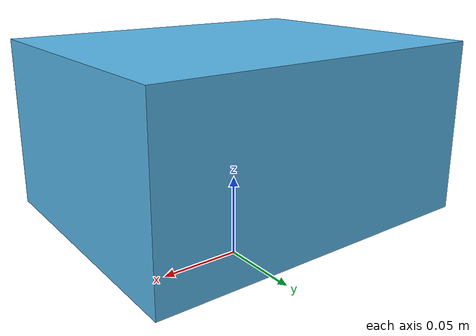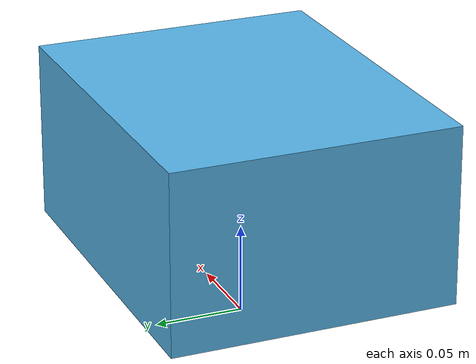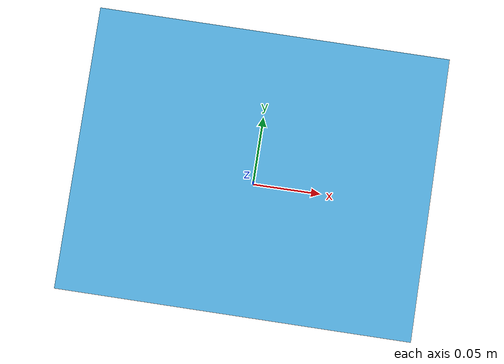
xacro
<?xml version="1.0"?>
<robot xmlns:xacro="http://www.ros.org/wiki/xacro" name="mobile_robot">
  <xacro:property name="base_to_floor_z" value="0.033"/>
  <xacro:property name="laser_x" value="0.05"/>
  <xacro:property name="laser_y" value="0.0"/>
  <xacro:property name="laser_z" value="0.08"/>
  <xacro:property name="camera_x" value="0.10"/>
  <xacro:property name="camera_y" value="0.0"/>
  <xacro:property name="camera_z" value="0.10"/>

  <link name="base_footprint"/>

  <link name="base_link">
    <visual>
      <origin xyz="0 0 0.05" rpy="0 0 0"/>
      <geometry>
        <box size="0.2 0.16 0.1"/>
      </geometry>
    </visual>
  </link>

  <joint name="base_footprint_to_base_link" type="fixed">
    <parent link="base_footprint"/>
    <child link="base_link"/>
    <origin xyz="0 0 ${base_to_floor_z}" rpy="0 0 0"/>
  </joint>

  <link name="laser_frame"/>
  <joint name="base_link_to_laser" type="fixed">
    <parent link="base_link"/>
    <child link="laser_frame"/>
    <origin xyz="${laser_x} ${laser_y} ${laser_z}" rpy="0 0 0"/>
  </joint>

  <link name="imu_link"/>
  <joint name="laser_to_imu" type="fixed">
    <parent link="laser_frame"/>
    <child link="imu_link"/>
    <origin xyz="0 0 0" rpy="0 0 0"/>
  </joint>

  <link name="camera_optical_frame"/>
  <joint name="base_link_to_camera" type="fixed">
    <parent link="base_link"/>
    <child link="camera_optical_frame"/>
    <origin xyz="${camera_x} ${camera_y} ${camera_z}" rpy="-1.5708 0 -1.5708"/>
  </joint>
</robot>
